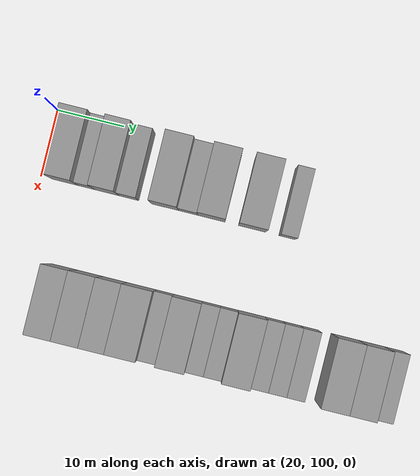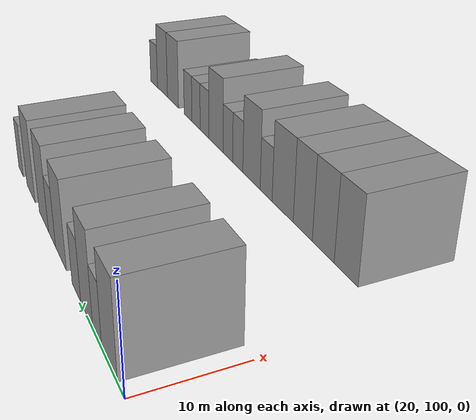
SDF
<sdf version="1.6">
 <world name="default">
  <model name="building_71">
   <static>1</static>
   <pose>25.0000 103.7699 0 0.000000 0.000000 0.000000</pose>
   <link name="link">
    <pose>0 0 4.50 0 0 0</pose>
    <collision name="collision"><geometry><box><size>10.0000 4.0080 9.0000</size></box></geometry></collision>
    <visual name="visual">
     <cast_shadows>0</cast_shadows>
     <geometry><box><size>10.0000 4.0080 9.0000</size></box></geometry>
     <material>
      <script>
       <uri>model://grey_wall/materials/scripts</uri>
       <uri>model://grey_wall/materials/textures</uri>
       <name>vrc/grey_wall</name>
      </script>
     </material>
    </visual>
   </link>
  </model>
  <model name="building_72">
   <static>1</static>
   <pose>25.0000 107.0148 0 0.000000 0.000000 0.000000</pose>
   <link name="link">
    <pose>0 0 3.00 0 0 0</pose>
    <collision name="collision"><geometry><box><size>10.0000 2.4818 6.0000</size></box></geometry></collision>
    <visual name="visual">
     <cast_shadows>0</cast_shadows>
     <geometry><box><size>10.0000 2.4818 6.0000</size></box></geometry>
     <material>
      <script>
       <uri>model://grey_wall/materials/scripts</uri>
       <uri>model://grey_wall/materials/textures</uri>
       <name>vrc/grey_wall</name>
      </script>
     </material>
    </visual>
   </link>
  </model>
  <model name="building_73">
   <static>1</static>
   <pose>25.0000 110.0817 0 0.000000 0.000000 0.000000</pose>
   <link name="link">
    <pose>0 0 4.50 0 0 0</pose>
    <collision name="collision"><geometry><box><size>10.0000 3.6520 9.0000</size></box></geometry></collision>
    <visual name="visual">
     <cast_shadows>0</cast_shadows>
     <geometry><box><size>10.0000 3.6520 9.0000</size></box></geometry>
     <material>
      <script>
       <uri>model://grey_wall/materials/scripts</uri>
       <uri>model://grey_wall/materials/textures</uri>
       <name>vrc/grey_wall</name>
      </script>
     </material>
    </visual>
   </link>
  </model>
  <model name="building_74">
   <static>1</static>
   <pose>25.0000 113.3369 0 0.000000 0.000000 0.000000</pose>
   <link name="link">
    <pose>0 0 3.00 0 0 0</pose>
    <collision name="collision"><geometry><box><size>10.0000 2.8584 6.0000</size></box></geometry></collision>
    <visual name="visual">
     <cast_shadows>0</cast_shadows>
     <geometry><box><size>10.0000 2.8584 6.0000</size></box></geometry>
     <material>
      <script>
       <uri>model://grey_wall/materials/scripts</uri>
       <uri>model://grey_wall/materials/textures</uri>
       <name>vrc/grey_wall</name>
      </script>
     </material>
    </visual>
   </link>
  </model>
  <model name="building_75">
   <static>1</static>
   <pose>25.0000 118.7987 0 0.000000 0.000000 0.000000</pose>
   <link name="link">
    <pose>0 0 4.50 0 0 0</pose>
    <collision name="collision"><geometry><box><size>10.0000 4.0652 9.0000</size></box></geometry></collision>
    <visual name="visual">
     <cast_shadows>0</cast_shadows>
     <geometry><box><size>10.0000 4.0652 9.0000</size></box></geometry>
     <material>
      <script>
       <uri>model://grey_wall/materials/scripts</uri>
       <uri>model://grey_wall/materials/textures</uri>
       <name>vrc/grey_wall</name>
      </script>
     </material>
    </visual>
   </link>
  </model>
  <model name="building_76">
   <static>1</static>
   <pose>25.0000 122.2669 0 0.000000 0.000000 0.000000</pose>
   <link name="link">
    <pose>0 0 3.00 0 0 0</pose>
    <collision name="collision"><geometry><box><size>10.0000 2.8713 6.0000</size></box></geometry></collision>
    <visual name="visual">
     <cast_shadows>0</cast_shadows>
     <geometry><box><size>10.0000 2.8713 6.0000</size></box></geometry>
     <material>
      <script>
       <uri>model://grey_wall/materials/scripts</uri>
       <uri>model://grey_wall/materials/textures</uri>
       <name>vrc/grey_wall</name>
      </script>
     </material>
    </visual>
   </link>
  </model>
  <model name="building_77">
   <static>1</static>
   <pose>25.0000 125.7237 0 0.000000 0.000000 0.000000</pose>
   <link name="link">
    <pose>0 0 4.50 0 0 0</pose>
    <collision name="collision"><geometry><box><size>10.0000 4.0424 9.0000</size></box></geometry></collision>
    <visual name="visual">
     <cast_shadows>0</cast_shadows>
     <geometry><box><size>10.0000 4.0424 9.0000</size></box></geometry>
     <material>
      <script>
       <uri>model://grey_wall/materials/scripts</uri>
       <uri>model://grey_wall/materials/textures</uri>
       <name>vrc/grey_wall</name>
      </script>
     </material>
    </visual>
   </link>
  </model>
  <model name="building_78">
   <static>1</static>
   <pose>25.0000 131.7812 0 0.000000 0.000000 0.000000</pose>
   <link name="link">
    <pose>0 0 4.50 0 0 0</pose>
    <collision name="collision"><geometry><box><size>10.0000 4.0725 9.0000</size></box></geometry></collision>
    <visual name="visual">
     <cast_shadows>0</cast_shadows>
     <geometry><box><size>10.0000 4.0725 9.0000</size></box></geometry>
     <material>
      <script>
       <uri>model://grey_wall/materials/scripts</uri>
       <uri>model://grey_wall/materials/textures</uri>
       <name>vrc/grey_wall</name>
      </script>
     </material>
    </visual>
   </link>
  </model>
  <model name="building_79">
   <static>1</static>
   <pose>25.0000 137.0326 0 0.000000 0.000000 0.000000</pose>
   <link name="link">
    <pose>0 0 3.00 0 0 0</pose>
    <collision name="collision"><geometry><box><size>10.0000 2.4304 6.0000</size></box></geometry></collision>
    <visual name="visual">
     <cast_shadows>0</cast_shadows>
     <geometry><box><size>10.0000 2.4304 6.0000</size></box></geometry>
     <material>
      <script>
       <uri>model://grey_wall/materials/scripts</uri>
       <uri>model://grey_wall/materials/textures</uri>
       <name>vrc/grey_wall</name>
      </script>
     </material>
    </visual>
   </link>
  </model>
  <model name="building_169">
   <static>1</static>
   <pose>47.0000 106.5791 0 0.000000 0.000000 0.000000</pose>
   <link name="link">
    <pose>0 0 4.50 0 0 0</pose>
    <collision name="collision"><geometry><box><size>10.0000 3.8634 9.0000</size></box></geometry></collision>
    <visual name="visual">
     <cast_shadows>0</cast_shadows>
     <geometry><box><size>10.0000 3.8634 9.0000</size></box></geometry>
     <material>
      <script>
       <uri>model://grey_wall/materials/scripts</uri>
       <uri>model://grey_wall/materials/textures</uri>
       <name>vrc/grey_wall</name>
      </script>
     </material>
    </visual>
   </link>
  </model>
  <model name="building_170">
   <static>1</static>
   <pose>47.0000 110.4432 0 0.000000 0.000000 0.000000</pose>
   <link name="link">
    <pose>0 0 4.50 0 0 0</pose>
    <collision name="collision"><geometry><box><size>10.0000 3.8647 9.0000</size></box></geometry></collision>
    <visual name="visual">
     <cast_shadows>0</cast_shadows>
     <geometry><box><size>10.0000 3.8647 9.0000</size></box></geometry>
     <material>
      <script>
       <uri>model://grey_wall/materials/scripts</uri>
       <uri>model://grey_wall/materials/textures</uri>
       <name>vrc/grey_wall</name>
      </script>
     </material>
    </visual>
   </link>
  </model>
  <model name="building_171">
   <static>1</static>
   <pose>47.0000 114.2092 0 0.000000 0.000000 0.000000</pose>
   <link name="link">
    <pose>0 0 4.50 0 0 0</pose>
    <collision name="collision"><geometry><box><size>10.0000 3.6671 9.0000</size></box></geometry></collision>
    <visual name="visual">
     <cast_shadows>0</cast_shadows>
     <geometry><box><size>10.0000 3.6671 9.0000</size></box></geometry>
     <material>
      <script>
       <uri>model://grey_wall/materials/scripts</uri>
       <uri>model://grey_wall/materials/textures</uri>
       <name>vrc/grey_wall</name>
      </script>
     </material>
    </visual>
   </link>
  </model>
  <model name="building_172">
   <static>1</static>
   <pose>47.0000 118.2589 0 0.000000 0.000000 0.000000</pose>
   <link name="link">
    <pose>0 0 4.50 0 0 0</pose>
    <collision name="collision"><geometry><box><size>10.0000 4.4325 9.0000</size></box></geometry></collision>
    <visual name="visual">
     <cast_shadows>0</cast_shadows>
     <geometry><box><size>10.0000 4.4325 9.0000</size></box></geometry>
     <material>
      <script>
       <uri>model://grey_wall/materials/scripts</uri>
       <uri>model://grey_wall/materials/textures</uri>
       <name>vrc/grey_wall</name>
      </script>
     </material>
    </visual>
   </link>
  </model>
  <model name="building_173">
   <static>1</static>
   <pose>47.0000 121.8299 0 0.000000 0.000000 0.000000</pose>
   <link name="link">
    <pose>0 0 3.00 0 0 0</pose>
    <collision name="collision"><geometry><box><size>10.0000 2.7095 6.0000</size></box></geometry></collision>
    <visual name="visual">
     <cast_shadows>0</cast_shadows>
     <geometry><box><size>10.0000 2.7095 6.0000</size></box></geometry>
     <material>
      <script>
       <uri>model://grey_wall/materials/scripts</uri>
       <uri>model://grey_wall/materials/textures</uri>
       <name>vrc/grey_wall</name>
      </script>
     </material>
    </visual>
   </link>
  </model>
  <model name="building_174">
   <static>1</static>
   <pose>47.0000 125.2822 0 0.000000 0.000000 0.000000</pose>
   <link name="link">
    <pose>0 0 4.50 0 0 0</pose>
    <collision name="collision"><geometry><box><size>10.0000 4.1950 9.0000</size></box></geometry></collision>
    <visual name="visual">
     <cast_shadows>0</cast_shadows>
     <geometry><box><size>10.0000 4.1950 9.0000</size></box></geometry>
     <material>
      <script>
       <uri>model://grey_wall/materials/scripts</uri>
       <uri>model://grey_wall/materials/textures</uri>
       <name>vrc/grey_wall</name>
      </script>
     </material>
    </visual>
   </link>
  </model>
  <model name="building_175">
   <static>1</static>
   <pose>47.0000 128.7130 0 0.000000 0.000000 0.000000</pose>
   <link name="link">
    <pose>0 0 3.00 0 0 0</pose>
    <collision name="collision"><geometry><box><size>10.0000 2.6665 6.0000</size></box></geometry></collision>
    <visual name="visual">
     <cast_shadows>0</cast_shadows>
     <geometry><box><size>10.0000 2.6665 6.0000</size></box></geometry>
     <material>
      <script>
       <uri>model://grey_wall/materials/scripts</uri>
       <uri>model://grey_wall/materials/textures</uri>
       <name>vrc/grey_wall</name>
      </script>
     </material>
    </visual>
   </link>
  </model>
  <model name="building_176">
   <static>1</static>
   <pose>47.0000 131.3461 0 0.000000 0.000000 0.000000</pose>
   <link name="link">
    <pose>0 0 3.00 0 0 0</pose>
    <collision name="collision"><geometry><box><size>10.0000 2.5998 6.0000</size></box></geometry></collision>
    <visual name="visual">
     <cast_shadows>0</cast_shadows>
     <geometry><box><size>10.0000 2.5998 6.0000</size></box></geometry>
     <material>
      <script>
       <uri>model://grey_wall/materials/scripts</uri>
       <uri>model://grey_wall/materials/textures</uri>
       <name>vrc/grey_wall</name>
      </script>
     </material>
    </visual>
   </link>
  </model>
  <model name="building_177">
   <static>1</static>
   <pose>47.0000 134.6909 0 0.000000 0.000000 0.000000</pose>
   <link name="link">
    <pose>0 0 4.50 0 0 0</pose>
    <collision name="collision"><geometry><box><size>10.0000 4.0898 9.0000</size></box></geometry></collision>
    <visual name="visual">
     <cast_shadows>0</cast_shadows>
     <geometry><box><size>10.0000 4.0898 9.0000</size></box></geometry>
     <material>
      <script>
       <uri>model://grey_wall/materials/scripts</uri>
       <uri>model://grey_wall/materials/textures</uri>
       <name>vrc/grey_wall</name>
      </script>
     </material>
    </visual>
   </link>
  </model>
  <model name="building_178">
   <static>1</static>
   <pose>47.0000 138.0848 0 0.000000 0.000000 0.000000</pose>
   <link name="link">
    <pose>0 0 3.00 0 0 0</pose>
    <collision name="collision"><geometry><box><size>10.0000 2.6980 6.0000</size></box></geometry></collision>
    <visual name="visual">
     <cast_shadows>0</cast_shadows>
     <geometry><box><size>10.0000 2.6980 6.0000</size></box></geometry>
     <material>
      <script>
       <uri>model://grey_wall/materials/scripts</uri>
       <uri>model://grey_wall/materials/textures</uri>
       <name>vrc/grey_wall</name>
      </script>
     </material>
    </visual>
   </link>
  </model>
  <model name="building_179">
   <static>1</static>
   <pose>47.0000 140.7570 0 0.000000 0.000000 0.000000</pose>
   <link name="link">
    <pose>0 0 3.00 0 0 0</pose>
    <collision name="collision"><geometry><box><size>10.0000 2.6464 6.0000</size></box></geometry></collision>
    <visual name="visual">
     <cast_shadows>0</cast_shadows>
     <geometry><box><size>10.0000 2.6464 6.0000</size></box></geometry>
     <material>
      <script>
       <uri>model://grey_wall/materials/scripts</uri>
       <uri>model://grey_wall/materials/textures</uri>
       <name>vrc/grey_wall</name>
      </script>
     </material>
    </visual>
   </link>
  </model>
  <model name="building_180">
   <static>1</static>
   <pose>47.0000 143.3862 0 0.000000 0.000000 0.000000</pose>
   <link name="link">
    <pose>0 0 3.00 0 0 0</pose>
    <collision name="collision"><geometry><box><size>10.0000 2.6120 6.0000</size></box></geometry></collision>
    <visual name="visual">
     <cast_shadows>0</cast_shadows>
     <geometry><box><size>10.0000 2.6120 6.0000</size></box></geometry>
     <material>
      <script>
       <uri>model://grey_wall/materials/scripts</uri>
       <uri>model://grey_wall/materials/textures</uri>
       <name>vrc/grey_wall</name>
      </script>
     </material>
    </visual>
   </link>
  </model>
  <model name="building_181">
   <static>1</static>
   <pose>47.0000 148.7116 0 0.000000 0.000000 0.000000</pose>
   <link name="link">
    <pose>0 0 4.50 0 0 0</pose>
    <collision name="collision"><geometry><box><size>10.0000 4.0387 9.0000</size></box></geometry></collision>
    <visual name="visual">
     <cast_shadows>0</cast_shadows>
     <geometry><box><size>10.0000 4.0387 9.0000</size></box></geometry>
     <material>
      <script>
       <uri>model://grey_wall/materials/scripts</uri>
       <uri>model://grey_wall/materials/textures</uri>
       <name>vrc/grey_wall</name>
      </script>
     </material>
    </visual>
   </link>
  </model>
  <model name="building_182">
   <static>1</static>
   <pose>47.0000 152.6869 0 0.000000 0.000000 0.000000</pose>
   <link name="link">
    <pose>0 0 4.50 0 0 0</pose>
    <collision name="collision"><geometry><box><size>10.0000 3.9119 9.0000</size></box></geometry></collision>
    <visual name="visual">
     <cast_shadows>0</cast_shadows>
     <geometry><box><size>10.0000 3.9119 9.0000</size></box></geometry>
     <material>
      <script>
       <uri>model://grey_wall/materials/scripts</uri>
       <uri>model://grey_wall/materials/textures</uri>
       <name>vrc/grey_wall</name>
      </script>
     </material>
    </visual>
   </link>
  </model>
  <model name="building_183">
   <static>1</static>
   <pose>47.0000 156.0376 0 0.000000 0.000000 0.000000</pose>
   <link name="link">
    <pose>0 0 3.00 0 0 0</pose>
    <collision name="collision"><geometry><box><size>10.0000 2.7895 6.0000</size></box></geometry></collision>
    <visual name="visual">
     <cast_shadows>0</cast_shadows>
     <geometry><box><size>10.0000 2.7895 6.0000</size></box></geometry>
     <material>
      <script>
       <uri>model://grey_wall/materials/scripts</uri>
       <uri>model://grey_wall/materials/textures</uri>
       <name>vrc/grey_wall</name>
      </script>
     </material>
    </visual>
   </link>
  </model>
 </world>
</sdf>
